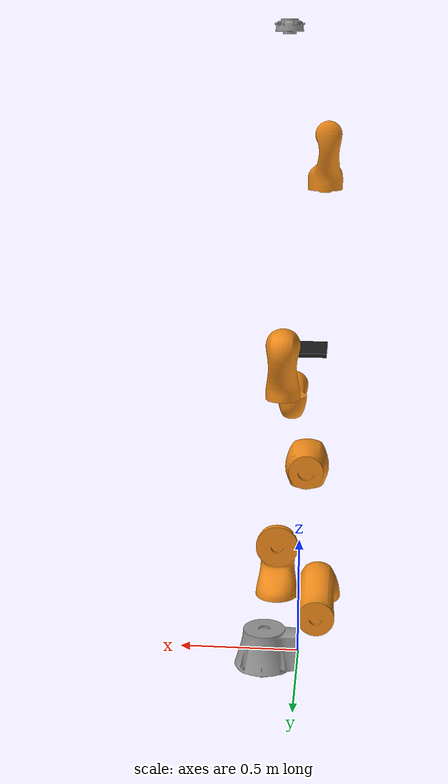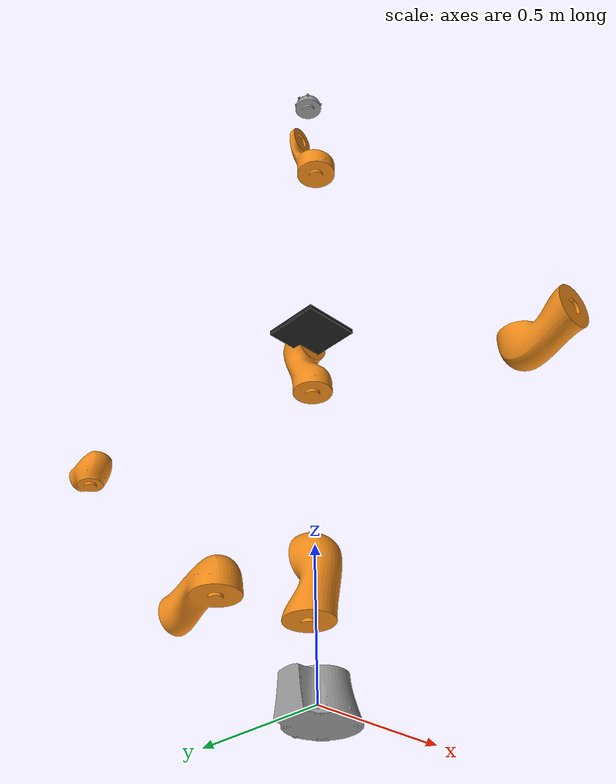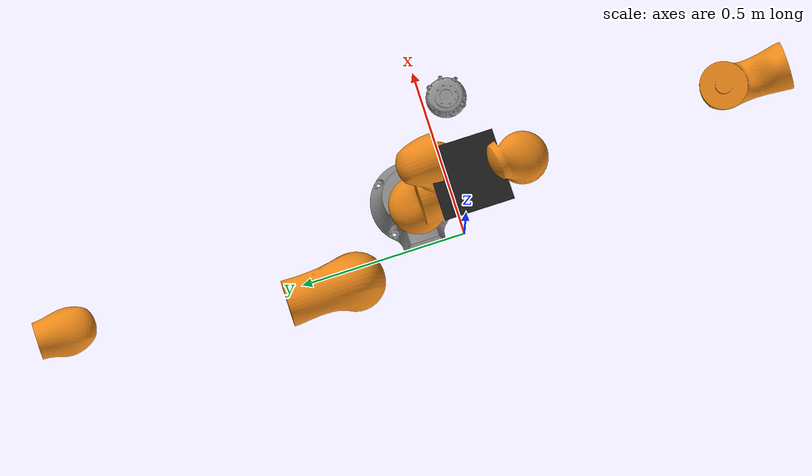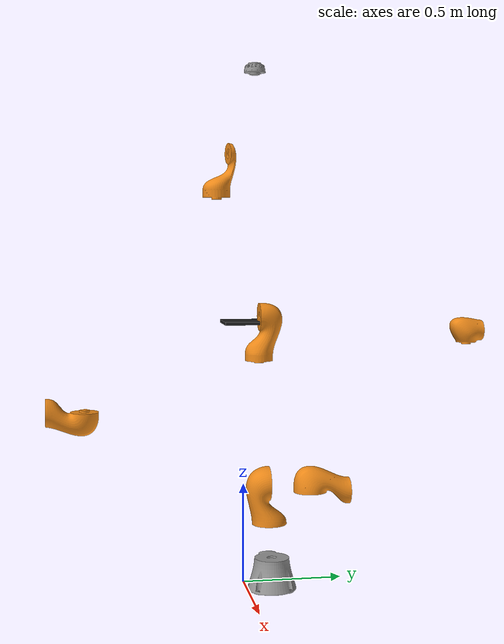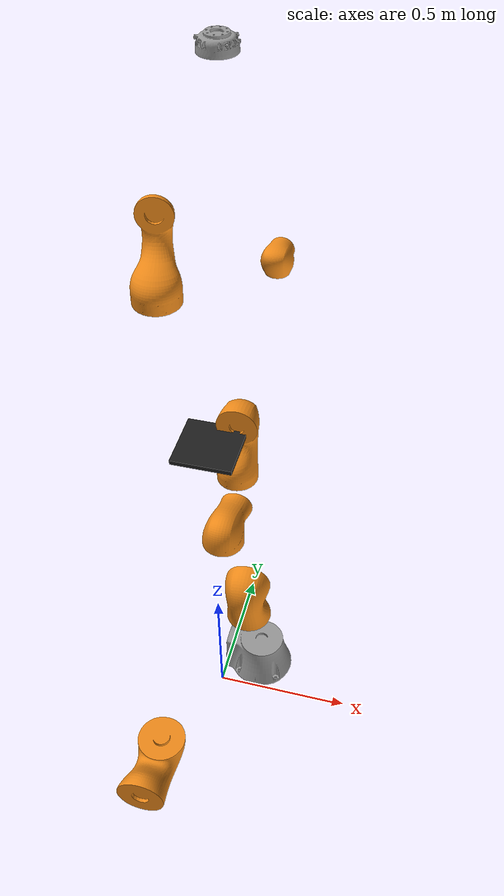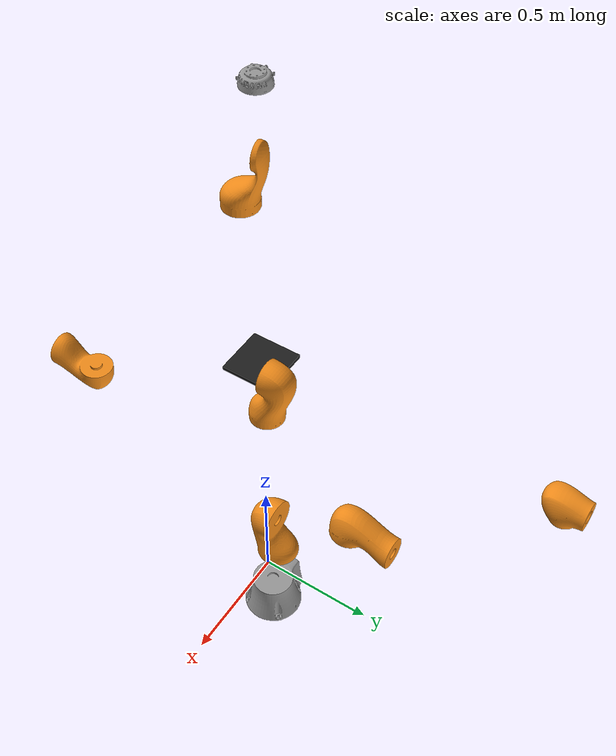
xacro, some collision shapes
<?xml version="1.0"?>
<robot name="lbr_iiwa" xmlns:xacro="http://www.ros.org/wiki/xacro">

  <xacro:property name="iiwa_flange_height" value="0.045"/>
  <!--Import the lbr iiwa macro -->
  <xacro:include filename="$(find lbr_iiwa_description)/urdf/lbr_iiwa.xacro"/>
  <xacro:include filename="$(find planar_end_eff)/urdf/planar_end_eff.urdf.xacro"/>

  <!-- Fix to world just for testing -->
  <link name="world"/>

  <!--lbr-->
  <xacro:lbr_iiwa name="lbr_iiwa" hardware_interface=" " parent="world">
    <origin xyz="0 0 0.0" rpy="0 0 0" />
  </xacro:lbr_iiwa>

  <!-- end effector -->
  <xacro:planar_end_eff name="planar_end_eff" parent_link="lbr_iiwa_link_7">
    <origin xyz="0 0 ${iiwa_flange_height}" rpy="0.0 0.0 0.0"/>
  </xacro:planar_end_eff>

</robot>

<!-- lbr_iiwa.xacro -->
<robot name="lbr_iiwa" xmlns:xacro="http://www.ros.org/wiki/xacro">

  <!-- Import all Gazebo-customization elements, including Gazebo colors -->
  <xacro:include filename="$(find lbr_iiwa_description)/urdf/lbr_iiwa.gazebo.xacro" />
  <!-- Import Transmissions -->
  <xacro:include filename="$(find lbr_iiwa_description)/urdf/lbr_iiwa.transmission.xacro" />
  <!-- Include Utilities -->
  <xacro:include filename="$(find lbr_iiwa_description)/urdf/utilities.xacro" />

  <!-- some constants -->
  <xacro:property name="safety_controller_k_pos" value="100" />
  <xacro:property name="safety_controller_k_vel" value="2" />
  <xacro:property name="joint_damping" value="0.5" />
  <xacro:property name="max_effort" value="300"/>
  <xacro:property name="max_velocity" value="10"/>
  <xacro:property name="M_PI" value="3.14159265359"/>

  <xacro:macro name="lbr_iiwa" params="parent name hardware_interface *origin">

    <!--joint between {parent} and link_0-->
    <joint name="${parent}_joint" type="fixed">
      <insert_block name="origin"/>
      <parent link="${parent}"/>
      <child link="${name}_link_0"/>
    </joint>

    <link name="${name}_link_0">
      <inertial>
        <origin xyz="-0.1 0 0.07" rpy="0 0 0"/>
        <mass value="5"/>
        <inertia ixx="0.05"  ixy="0"  ixz="0" iyy="0.06" iyz="0" izz="0.03" />
      </inertial>

      <visual>
        <origin xyz="0 0 0" rpy="0 0 0"/>
        <geometry>
          <mesh filename="package://lbr_iiwa_description/meshes/link_0.stl"/>
        </geometry>
        <material name="Grey"/>
      </visual>

      <collision>
        <origin xyz="0 0 0" rpy="0 0 0"/>
        <geometry>
          <mesh filename="package://lbr_iiwa_description/meshes/coarse/link_0.stl"/>
        </geometry>
        <material name="Grey"/>
      </collision>

      <self_collision_checking>
        <origin xyz="0 0 0" rpy="0 0 0"/>
        <geometry>
          <capsule radius="0.15" length="0.25"/>
        </geometry>
      </self_collision_checking>

    </link>

    <!-- joint between link_0 and link_1 -->
    <joint name="${name}_joint_1" type="revolute">
      <parent link="${name}_link_0"/>
      <child link="${name}_link_1"/>
      <origin xyz="0 0 0.1575" rpy="0 0 0"/>
      <axis xyz="0 0 1"/>
      <limit lower="${-170 * PI / 180}" upper="${170 * PI / 180}"
             effort="${max_effort}" velocity="${max_velocity}" />
         <safety_controller soft_lower_limit="${-168 * M_PI / 180}"
           soft_upper_limit="${168 * M_PI / 180}"
           k_position="${safety_controller_k_pos}"
           k_velocity="${safety_controller_k_vel}"/>
      <dynamics damping="${joint_damping}"/>
    </joint>

    <link name="${name}_link_1">
      <inertial>
        <origin xyz="0 -0.03 0.12" rpy="0 0 0"/>
        <mass value="4"/>
        <inertia ixx="0.1"  ixy="0"  ixz="0" iyy="0.09" iyz="0" izz="0.02" />
      </inertial>

      <visual>
        <origin xyz="0 0 0" rpy="0 0 0"/>
        <geometry>
          <mesh filename="package://lbr_iiwa_description/meshes/link_1.stl"/>
        </geometry>
        <material name="Orange"/>
      </visual>

      <collision>
        <origin xyz="0 0 0" rpy="0 0 0"/>
        <geometry>
          <mesh filename="package://lbr_iiwa_description/meshes/coarse/link_1.stl"/>
        </geometry>
        <material name="Orange"/>
      </collision>
    </link>

    <!-- joint between link_1 and link_2 -->
    <joint name="${name}_joint_2" type="revolute">
      <parent link="${name}_link_1"/>
      <child link="${name}_link_2"/>
      <origin xyz="0 0 0.2025" rpy="${PI / 2}   0 ${PI}"/>
      <axis xyz="0 0 1"/>
      <limit lower="${-120 * PI / 180}" upper="${120 * PI / 180}"
             effort="${max_effort}" velocity="${max_velocity}" />
       <safety_controller soft_lower_limit="${-118 * PI / 180}"
           soft_upper_limit="${118 * PI / 180}"
           k_position="${safety_controller_k_pos}"
           k_velocity="${safety_controller_k_vel}"/>
      <dynamics damping="${joint_damping}"/>
    </joint>

    <link name="${name}_link_2">
      <inertial>
        <origin xyz="0.0003 0.059 0.042" rpy="0 0 0"/>
        <mass value="4"/>
        <inertia ixx="0.05"  ixy="0"  ixz="0" iyy="0.018" iyz="0" izz="0.044" />
      </inertial>

      <visual>
        <origin xyz="0 0 0" rpy="0 0 0"/>
        <geometry>
          <mesh filename="package://lbr_iiwa_description/meshes/link_2.stl"/>
        </geometry>
        <material name="Orange"/>
      </visual>

      <collision>
        <origin xyz="0 0 0" rpy="0 0 0"/>
        <geometry>
          <mesh filename="package://lbr_iiwa_description/meshes/coarse/link_2.stl"/>
        </geometry>
        <material name="Orange"/>
      </collision>
    </link>

    <!-- joint between link_2 and link_3 -->
    <joint name="${name}_joint_3" type="revolute">
      <parent link="${name}_link_2"/>
      <child link="${name}_link_3"/>
      <origin xyz="0 0.2045 0" rpy="${PI / 2} 0 ${PI}"/>
      <axis xyz="0 0 1"/>
      <limit lower="${-170 * PI / 180}" upper="${170 * PI / 180}"
             effort="${max_effort}" velocity="${max_velocity}" />
       <safety_controller soft_lower_limit="${-118 * PI / 180}"
           soft_upper_limit="${118 * PI / 180}"
           k_position="${safety_controller_k_pos}"
           k_velocity="${safety_controller_k_vel}"/>
      <dynamics damping="${joint_damping}"/>
    </joint>

    <link name="${name}_link_3">
      <inertial>
        <origin xyz="0 0.03 0.13" rpy="0 0 0"/>
        <mass value="3"/>
        <inertia ixx="0.08"  ixy="0"  ixz="0" iyy="0.075" iyz="0" izz="0.01" />
      </inertial>

      <visual>
        <origin xyz="0 0 0" rpy="0 0 0"/>
        <geometry>
          <mesh filename="package://lbr_iiwa_description/meshes/link_3.stl"/>
        </geometry>
        <material name="Orange"/>
      </visual>

      <collision>
        <origin xyz="0 0 0" rpy="0 0 0"/>
        <geometry>
          <mesh filename="package://lbr_iiwa_description/meshes/coarse/link_3.stl"/>
        </geometry>
        <material name="Orange"/>
      </collision>
    </link>

   <!-- joint between link_3 and link_4 -->
    <joint name="${name}_joint_4" type="revolute">
      <parent link="${name}_link_3"/>
      <child link="${name}_link_4"/>
      <origin xyz="0 0 0.2155" rpy="${PI / 2} 0 0"/>
      <axis xyz="0 0 1"/>
      <limit lower="${-120 * PI / 180}" upper="${120 * PI / 180}"
             effort="${max_effort}" velocity="${max_velocity}" />
       <safety_controller soft_lower_limit="${-118 * PI / 180}"
           soft_upper_limit="${118 * PI / 180}"
           k_position="${safety_controller_k_pos}"
           k_velocity="${safety_controller_k_vel}"/>
      <dynamics damping="${joint_damping}"/>
    </joint>

    <link name="${name}_link_4">
      <inertial>
        <origin xyz="0 0.067 0.034" rpy="0 0 0"/>
        <mass value="2.7"/>
        <inertia ixx="0.03"  ixy="0"  ixz="0" iyy="0.01" iyz="0" izz="0.029" />
      </inertial>

      <visual>
        <origin xyz="0 0 0" rpy="0 0 0"/>
        <geometry>
          <mesh filename="package://lbr_iiwa_description/meshes/link_4.stl"/>
        </geometry>
        <material name="Orange"/>
      </visual>

      <collision>
        <origin xyz="0 0 0" rpy="0 0 0"/>
        <geometry>
          <mesh filename="package://lbr_iiwa_description/meshes/coarse/link_4.stl"/>
        </geometry>
        <material name="Orange"/>
      </collision>
    </link>

    <!-- joint between link_4 and link_5 -->
    <joint name="${name}_joint_5" type="revolute">
      <parent link="${name}_link_4"/>
      <child link="${name}_link_5"/>
      <origin xyz="0 0.1845 0" rpy="${-PI / 2} ${PI} 0"/>
      <axis xyz="0 0 1"/>
      <limit lower="${-170 * PI / 180}" upper="${170 * PI / 180}"
             effort="${max_effort}" velocity="${max_velocity}" />
       <safety_controller soft_lower_limit="${-118 * PI / 180}"
           soft_upper_limit="${118 * PI / 180}"
           k_position="${safety_controller_k_pos}"
           k_velocity="${safety_controller_k_vel}"/>
      <dynamics damping="${joint_damping}"/>
    </joint>

    <link name="${name}_link_5">
      <inertial>
        <origin xyz="0.0001 0.021 0.076" rpy="0 0 0"/>
        <mass value="1.7"/>
        <inertia ixx="0.02"  ixy="0"  ixz="0" iyy="0.018" iyz="0" izz="0.005" />
      </inertial>

      <visual>
        <origin xyz="0 0 0" rpy="0 0 0"/>
        <geometry>
          <mesh filename="package://lbr_iiwa_description/meshes/link_5.stl"/>
        </geometry>
        <material name="Orange"/>
      </visual>

      <collision>
        <origin xyz="0 0 0" rpy="0 0 0"/>
        <geometry>
          <mesh filename="package://lbr_iiwa_description/meshes/coarse/link_5.stl"/>
        </geometry>
        <material name="Orange"/>
      </collision>
    </link>

 <!-- joint between link_5 and link_6 -->
    <joint name="${name}_joint_6" type="revolute">
      <parent link="${name}_link_5"/>
      <child link="${name}_link_6"/>
      <origin xyz="0 0 0.2155" rpy="${PI / 2} 0 0"/>
      <axis xyz="0 0 1"/>
      <limit lower="${-120 * PI / 180}" upper="${120 * PI / 180}"
             effort="${max_effort}" velocity="${max_velocity}" />
       <safety_controller soft_lower_limit="${-118 * PI / 180}"
           soft_upper_limit="${118 * PI / 180}"
           k_position="${safety_controller_k_pos}"
           k_velocity="${safety_controller_k_vel}"/>
      <dynamics damping="${joint_damping}"/>
    </joint>

    <link name="${name}_link_6">
      <inertial>
        <origin xyz="0 0.0006 0.0004" rpy="0 0 0"/>
        <mass value="1.8"/>
        <inertia ixx="0.005"  ixy="0"  ixz="0" iyy="0.0036" iyz="0" izz="0.0047" />
      </inertial>

      <visual>
        <origin xyz="0 0 0" rpy="0 0 0"/>
        <geometry>
          <mesh filename="package://lbr_iiwa_description/meshes/link_6.stl"/>
        </geometry>
        <material name="Orange"/>
      </visual>

      <collision>
        <origin xyz="0 0 0" rpy="0 0 0"/>
        <geometry>
          <mesh filename="package://lbr_iiwa_description/meshes/coarse/link_6.stl"/>
        </geometry>
        <material name="Orange"/>
      </collision>
    </link>

 <!-- joint between link_6 and link_7 -->
    <joint name="${name}_joint_7" type="revolute">
      <parent link="${name}_link_6"/>
      <child link="${name}_link_7"/>
      <origin xyz="0 0.081 0" rpy="${- PI / 2} ${PI} 0"/>
      <axis xyz="0 0 1"/>
      <limit lower="${-175 * PI / 180}" upper="${175 * PI / 180}"
             effort="${max_effort}" velocity="${max_velocity}" />
       <safety_controller soft_lower_limit="${-118 * PI / 180}"
           soft_upper_limit="${118 * PI / 180}"
           k_position="${safety_controller_k_pos}"
           k_velocity="${safety_controller_k_vel}"/>
      <dynamics damping="${joint_damping}"/>
    </joint>

    <link name="${name}_link_7">
      <inertial>
        <origin xyz="0 0 0.02" rpy="0 0 0"/>
        <mass value="0.3"/>
        <inertia ixx="0.001"  ixy="0"  ixz="0" iyy="0.001" iyz="0" izz="0.001" />
      </inertial>

      <visual>
        <origin xyz="0 0 0" rpy="0 0 0"/>
        <geometry>
          <mesh filename="package://lbr_iiwa_description/meshes/link_7.stl"/>
        </geometry>
        <material name="Grey"/>
      </visual>

      <collision>
        <origin xyz="0 0 0" rpy="0 0 0"/>
        <geometry>
          <mesh filename="package://lbr_iiwa_description/meshes/coarse/link_7.stl"/>
        </geometry>
        <material name="Grey"/>
      </collision>
    </link>

    <!--Extensions -->
    <xacro:lbr_iiwa_gazebo name="${name}" />
    <xacro:lbr_iiwa_transmission name="${name}" hardware_interface="${hardware_interface}"/>

  </xacro:macro>

</robot>

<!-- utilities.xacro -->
<robot name="lbr_iiwa" xmlns:xacro="http://www.ros.org/wiki/xacro">

  <xacro:property name="PI" value="3.1415926535897931"/>

<!-- The following macros are adapted from the LWR 4 definitions of the RCPRG - https://github.com/RCPRG-ros-pkg/lwr_robot -->
  <!--Little helper macros to define the inertia matrix needed for links.-->
  <!--Cuboid-->
  <xacro:macro name="cuboid_inertia" params="width height length mass">
    <inertia ixx="${mass * (height * height + length * length) / 12)}"
             iyy="${mass * (width * width + length * length) / 12)}"
             izz="${mass * (width * width + height * height) / 12)}"
             ixy="0" iyz="0" ixz="0"/>
  </xacro:macro>

  <!--Cylinder: length is along the y-axis! -->
  <xacro:macro name="cylinder_inertia" params="radius length mass">
    <inertia ixx="${mass * (3 * radius * radius + length * length) / 12)}"
             iyy="${mass * radius* radius / 2)}"
             izz="${mass * (3 * radius * radius + length * length) / 12)}"
             ixy="0" iyz="0" ixz="0"/>
  </xacro:macro>

</robot>

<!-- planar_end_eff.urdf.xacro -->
<robot xmlns:sensor="http://playerstage.sourceforge.net/gazebo/xmlschema/#sensor"
xmlns:controller="http://playerstage.sourceforge.net/gazebo/xmlschema/#controller"
xmlns:interface="http://playerstage.sourceforge.net/gazebo/xmlschema/#interface"
xmlns:xacro="http://www.ros.org/wiki/xacro">

  <!-- Import all Gazebo-customization elements, including Gazebo colors -->
  <xacro:include filename="$(find planar_end_eff)/urdf/planar_end_eff.gazebo.xacro" />

  <xacro:macro name="planar_end_eff_visual" params="name material">
     <visual>
       <geometry>
          <mesh filename="package://planar_end_eff/meshes/visual/${name}_visual.stl" />
       </geometry>
       <material name="${material}"/>
     </visual>
  </xacro:macro>

  <xacro:macro name="planar_end_eff_collision" params="name material">
     <collision>
       <origin rpy="0 0 0" xyz="0 0 0.008"/>
       <geometry>
	        <box size="0.2 0.2 0.016" />
          <!--mesh filename="package://planar_end_eff/meshes/collision/${name}_collision.stl" /-->
       </geometry>
       <material name="${material}"/>
     </collision>
  </xacro:macro>

  <xacro:macro name="planar_end_eff" params="parent_link name *origin">
    <joint name="${name}_fixed_base_joint" type="fixed">
       <xacro:insert_block name="origin"/>
       <child link="${name}_link" />
       <parent link="${parent_link}"/>
    </joint>

   <gazebo reference="${name}_fixed_base_joint">
     <provideFeedback>true</provideFeedback>
     <disableFixedJointLumping>true</disableFixedJointLumping>
   </gazebo>

	<!-- The ft_sensor plugin -->
   <gazebo>
      <plugin name="ft_sensor" filename="libgazebo_ros_ft_sensor.so">
      <updateRate>100.0</updateRate>
      <topicName>ft_sensor_topic</topicName>
      <jointName>planar_end_eff_fixed_base_joint</jointName>
      </plugin>
   </gazebo>

    <link name="${name}_link">
      <xacro:planar_end_eff_visual name="planar_end_eff" material="Black"/>
      <xacro:planar_end_eff_collision name="planar_end_eff" material="Black"/>

      <inertial>
        <!-- Measured mass value -->
        <mass value="0.3" />
        <inertia
         ixx="0.01" ixy="0.0" ixz="0.0"
         iyy="0.01" iyz="0.0"
         izz="0.03" />
      </inertial>
    </link>

    <!--Extensions -->
    <xacro:planar_end_eff_gazebo name="${name}"/>

  </xacro:macro>

</robot>
